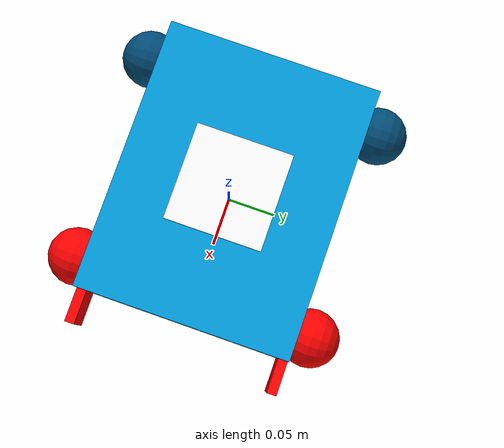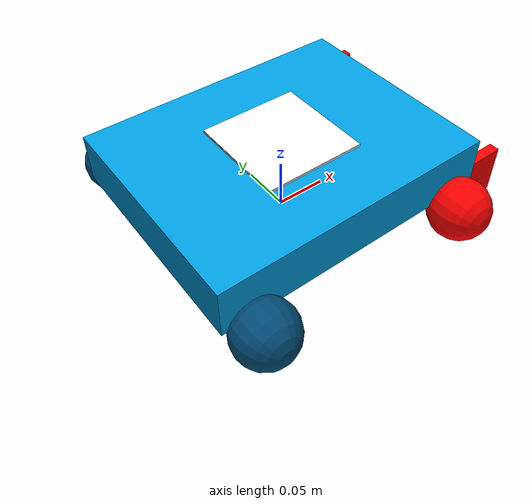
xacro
<?xml version="1.0"?>
<robot name="mecanum_vehicle" xmlns:xacro="http://www.ros.org/wiki/xacro" xmlns:ignition="http://gazebosim.org/schema">
<!-- Karam Dali 12/02/2025 Annecy,France -->
<!-- karamdali93@gmail.com -->
<!-- This is a simple 4 mecanume wheels robot with a tow figer gripper in the front of it -->

<!-- P.S  Any change in the robot dimentions should be reflected in config/mecanum_drive_controller . yaml -->

<!-- Robot Dimensions Parameters -->
<xacro:property name="robot_x" value="0.28" /> <!-- base_link length -->
<xacro:property name="robot_y" value="0.22" /> <!-- base_link width -->
<xacro:property name="robot_z" value="0.05" /> <!-- base_link height (thickness) -->
<xacro:property name="base_link_mass" value="0.75" />

<!-- base_link Inertia Parameters -->
<xacro:property name="base_link_ixx" value="${base_link_mass/12 * (robot_y*robot_y + robot_z*robot_z)}" />
<xacro:property name="base_link_iyy" value="${base_link_mass/12 * (robot_x*robot_x + robot_z*robot_z)}" />
<xacro:property name="base_link_izz" value="${base_link_mass/12 * (robot_x*robot_x + robot_y*robot_y)}" />

<!-- Robot AruCo Parameters -->
<xacro:property name="aruco_dimenstion" value="0.1" />
<xacro:property name="aruco_thick" value="0.002" />
<xacro:property name="aruco_mass" value="0.01" />
<xacro:property name="aruco_ixx" value="${aruco_mass/12 * (aruco_dimenstion*aruco_dimenstion + aruco_thick*aruco_thick)}" />
<xacro:property name="aruco_iyy" value="${aruco_mass/12 * (aruco_dimenstion*aruco_dimenstion + aruco_thick*aruco_thick)}" />
<xacro:property name="aruco_izz" value="${aruco_mass/12 * (aruco_dimenstion*aruco_dimenstion + aruco_dimenstion*aruco_dimenstion)}" />
<xacro:property name="aruco_z_offset" value="${base_link_center_z+robot_z/2 + 0.001}" />

<!-- Wheel Parameters -->
<xacro:property name="wheel_radius" value="0.03" />
<xacro:property name="wheel_width" value="0.03" />
<xacro:property name="wheel_mass" value="0.05" />

<!-- Wheel Inertia Parameters -->
<xacro:property name="wheel_ixx" value="${0.5 * wheel_mass * wheel_radius * wheel_radius}" />
<xacro:property name="wheel_iyy" value="${(1.0/12.0) * wheel_mass * (3*wheel_radius*wheel_radius + wheel_width*wheel_width)}" />
<xacro:property name="wheel_izz" value="${wheel_iyy}" />
<!-- We place the base_link center higher so the wheels touch ground at z=0. -->
<!-- base_link_center_z = wheel_radius + robot_z/2 -->
<xacro:property name="base_link_center_z" value="${wheel_radius + (robot_z/2)}" />
<!-- Calculated Joint Positions (relative to base_link origin) -->
<xacro:property name="front_x" value="${(robot_x / 2) - wheel_radius}" />
<xacro:property name="rear_x" value="${(-robot_x / 2) + wheel_radius}" />
<xacro:property name="left_y" value="${(robot_y / 2) + (wheel_width / 2)}" />
<xacro:property name="right_y" value="${(-robot_y / 2) - (wheel_width / 2)}" />
<!-- joint z is set so wheel center absolute z == wheel_radius (wheel touches ground) -->
<!-- joint z relative to base_link origin = -robot_z/2 -->
<xacro:property name="wheel_joint_z" value="${robot_z/2}"/>

<!-- Gripper specifications -->
<xacro:property name="gripper_mass" value="0.01" />
<xacro:property name="gripper_x" value="0.035" />
<xacro:property name="gripper_y" value="0.01" />
<xacro:property name="gripper_z" value="0.05" />
<xacro:property name="gripper_x_location" value="${(robot_x / 2) + (gripper_x/2)}" />
<xacro:property name="gripper_L_y_location" value="${((robot_y / 2) - (gripper_y/2))}" />
<xacro:property name="gripper_R_y_location" value="${-((robot_y / 2) - (gripper_y/2))}" />
<xacro:property name="gripper_z_location" value="${base_link_center_z/2}" />

<!-- Crate length -->
<xacro:property name="crate_length" value="0.15" />

<!-- Base base_link -->
<link name="base_link">
  <inertial>
    <mass value="${base_link_mass}"/>
    <inertia
    ixx="${base_link_ixx}"
    ixy="0.0"
    ixz="0.0"
    iyy="${base_link_iyy}"
    iyz="0.0"
    izz="${base_link_izz}"/>
    </inertial>
  <visual>
    <origin rpy="0 0 0" xyz="0 0 ${base_link_center_z}"/>
    <geometry>
      <box size="${robot_x} ${robot_y} ${robot_z}"/>
    </geometry>
    <material name="blue">
      <color rgba="0.0 0.612 0.867 1"/>
    </material>
  </visual>
  <collision>
    <origin rpy="0 0 0" xyz="0 0 ${base_link_center_z}"/>
    <geometry>
      <box size="${robot_x} ${robot_y} ${robot_z}"/>
    </geometry>
  </collision>
</link>

<!-- Robot AruCo  -->
<link name="aruco">
  <inertial>
    <mass value="${aruco_mass}"/>
    <inertia
      ixx="${aruco_ixx}"
      ixy="0.0"
      ixz="0.0"
      iyy="${aruco_iyy}"
      iyz="0.0"
      izz="${aruco_izz}"/>
  </inertial>

  <!-- Main ArUCo body (white) -->
  <visual>
    <origin rpy="0 0 1.57079" xyz="0 0 0"/>
    <geometry>
      <box size="${aruco_dimenstion} ${aruco_dimenstion} ${aruco_thick}"/>
    </geometry>
    <material name="white">
      <color rgba="1.0 1.0 1.0 1"/>
    </material>
  </visual>

  <!-- ArUCo texture on top surface -->
  <visual name="aruco_top">
    <origin xyz="0 0 ${aruco_thick/2}" rpy="0 0 0"/>
    <geometry>
      <box size="${aruco_dimenstion} ${aruco_dimenstion} 0.001"/>
    </geometry>
    <material name="white">
      <color rgba="1 1 1 0"/>
    </material>
  </visual>

  <collision>
    <origin rpy="0 0 0" xyz="0 0 0"/>
    <geometry>
      <box size="${aruco_dimenstion} ${aruco_dimenstion} ${aruco_thick}"/>
    </geometry>
  </collision>
</link>

<joint name="aruco_joint" type="fixed">
  <parent link="base_link"/>
  <child link="aruco"/>
  <origin xyz="0 0 ${aruco_z_offset}" rpy="0 0 0"/>
</joint>

<!-- Gripper Macro -->
<xacro:macro name="gripper" params="name x y z">
  <link name="${name}">
    <inertial>
      <mass value="${gripper_mass}"/>
      <inertia
        ixx="${(1/12) * gripper_mass * (y*y + z*z)}"
        ixy="0.0"
        ixz="0.0"
        iyy="${(1/12) * gripper_mass * (x*x + z*z)}"
        iyz="0.0"
        izz="${(1/12) * gripper_mass * (x*x + y*y)}"/>
    </inertial>
    <visual>
      <origin rpy="0 0 0" xyz="0 0 0"/>
      <geometry>
        <box size="${x} ${y} ${z}"/>
      </geometry>
      <material name="red_gripper">
        <color rgba="1.0 0.0 0.0 1"/>
      </material>
    </visual>
    <collision>
      <origin rpy="0 0 0" xyz="0 0 0"/>
      <geometry>
        <box size="${x} ${y} ${z}"/>
      </geometry>
    </collision>
  </link>
</xacro:macro>

<!-- Creat the left and right fingers of the gripper -->
<xacro:gripper name="gripper_L" x="${gripper_x}" y="${gripper_y}" z="${gripper_z}"/>
<xacro:gripper name="gripper_R" x="${gripper_x}" y="${gripper_y}" z="${gripper_z}"/>

<!-- Gripper joint macro -->
<xacro:macro name="gripper_joint" params="name parent child x y z robot_dimention_y side">
  <joint name="${name}" type="prismatic">
    <parent link="${parent}"/>
    <child link="${child}"/>
    <origin xyz="${x} ${y} ${z}" rpy="0 0 0"/>
    <!-- P.S : Left gripper moves in negative Y while right gripper moves in positive Y -->
    <xacro:if value="${side == 'left'}">
      <axis xyz="0 -1 0"/>
      <limit lower="0" upper="${((robot_dimention_y - (crate_length + 2*gripper_y)) / 2)+0.01}" effort="1000" velocity="0.1"/>
    </xacro:if>
    <xacro:if value="${side == 'right'}">
      <axis xyz="0 1 0"/>
      <limit lower="0" upper="${((robot_dimention_y - (crate_length + 2*gripper_y)) / 2)+0.01}" effort="1000" velocity="0.1"/>
    </xacro:if>
  </joint>
</xacro:macro>

<!-- Creat the gripper joints -->
<xacro:gripper_joint name="gripper_L_joint" parent="base_link" child="gripper_L"
x="${gripper_x_location}" y="${gripper_L_y_location}" z="${gripper_z_location}"
robot_dimention_y="${robot_y}" side="left"/>

<xacro:gripper_joint name="gripper_R_joint" parent="base_link" child="gripper_R"
x="${gripper_x_location}" y="${gripper_R_y_location}" z="${gripper_z_location}"
robot_dimention_y="${robot_y}" side="right"/>

<!-- Wheel Macro -->
<xacro:macro name="wheel" params="name color">
  <link name="${name}">
    <inertial>
      <mass value="${wheel_mass}"/>
      <inertia ixx="${wheel_ixx}" ixy="0.0" ixz="0.0" iyy="${wheel_iyy}" iyz="0.0" izz="${wheel_izz}"/>
    </inertial>
    <visual>
      <origin rpy="0 0 0" xyz="0 0 0"/>
      <geometry>
        <sphere radius="${wheel_radius}"/>
      </geometry>
      <material name="${color}">
        <xacro:if value="${color == 'red'}">
          <color rgba="1.0 0.0 0.0 1"/>
        </xacro:if>
        <xacro:unless value="${color == 'red'}">
          <color rgba="0.0 0.29 0.46 1"/>
        </xacro:unless>
      </material>
    </visual>
    <collision>
      <origin rpy="0 0 0" xyz="0 0 0"/>
      <geometry>
        <sphere radius="${wheel_radius}"/>
      </geometry>
    </collision>
  </link>
</xacro:macro>

<!-- Create Wheels -->
<xacro:wheel name="front_left_wheel" color="red"/>
<xacro:wheel name="front_right_wheel" color="red"/>
<xacro:wheel name="rear_left_wheel" color="dark_blue"/>
<xacro:wheel name="rear_right_wheel" color="dark_blue"/>

<!-- Wheel Joint Macro -->
<xacro:macro name="wheel_joint" params="name parent child x y z">
  <joint name="${name}" type="continuous">
    <parent link="${parent}"/>
    <child link="${child}"/>
    <origin xyz="${x} ${y} ${z}" rpy="1.57079 0 0"/>
    <axis xyz="0 0 1"/>
    <dynamics damping="0.2"/>
  </joint>
</xacro:macro>

<!-- Create Wheel Joints -->
<xacro:wheel_joint name="front_left_wheel_joint" parent="base_link" child="front_left_wheel"
x="${front_x}" y="${left_y}" z="${wheel_joint_z}"/>
<xacro:wheel_joint name="front_right_wheel_joint" parent="base_link" child="front_right_wheel"
x="${front_x}" y="${right_y}" z="${wheel_joint_z}"/>
<xacro:wheel_joint name="rear_left_wheel_joint" parent="base_link" child="rear_left_wheel"
x="${rear_x}" y="${left_y}" z="${wheel_joint_z}"/>
<xacro:wheel_joint name="rear_right_wheel_joint" parent="base_link" child="rear_right_wheel"
x="${rear_x}" y="${right_y}" z="${wheel_joint_z}"/>

<!-- Gazebo extension used to emulate mecanum wheel frictions -->
<xacro:macro name="gazebo" params="name value">
  <gazebo reference="${name}">
    <collision>
      <surface>
        <friction>
          <ode>
            <mu>1.0</mu>
            <mu2>0.0</mu2>
            <!-- We express friction direction in base_link frame to avoid confusion -->
            <fdir1 ignition:expressed_in="base_link">${value}</fdir1>
          </ode>
        </friction>
      </surface>
    </collision>
  </gazebo>
</xacro:macro>

<!-- base_link-frame mecanum directions (X forward, Y left) -->
<xacro:gazebo name="front_left_wheel"  value="1 -1 0"/>
<xacro:gazebo name="front_right_wheel" value="1 1 0"/>
<xacro:gazebo name="rear_left_wheel"   value="1 1 0"/>
<xacro:gazebo name="rear_right_wheel"  value="1 -1 0"/>

<ros2_control name="GazeboSimSystem" type="system">
  <hardware>
  <plugin>gz_ros2_control/GazeboSimSystem</plugin>
  </hardware>
  <joint name="front_left_wheel_joint">
    <command_interface name="velocity">
      <param name="min">-1</param>
      <param name="max">1</param>
    </command_interface>
      <state_interface name="position"/>
      <state_interface name="velocity"/>
  </joint>
  <joint name="front_right_wheel_joint">
    <command_interface name="velocity">
      <param name="min">-1</param>
      <param name="max">1</param>
    </command_interface>
      <state_interface name="position"/>
      <state_interface name="velocity"/>
  </joint>
  <joint name="rear_left_wheel_joint">
    <command_interface name="velocity">
      <param name="min">-1</param>
      <param name="max">1</param>
    </command_interface>
      <state_interface name="position"/>
      <state_interface name="velocity"/>
  </joint>
  <joint name="rear_right_wheel_joint">
    <command_interface name="velocity">
      <param name="min">-1</param>
      <param name="max">1</param>
    </command_interface>
      <state_interface name="position"/>
      <state_interface name="velocity"/>
  </joint>
  <joint name="gripper_L_joint">
  <command_interface name="position"/>
  <state_interface name="position"/>
  </joint>
  <joint name="gripper_R_joint">
    <command_interface name="position"/>
    <state_interface name="position"/>
  </joint>
</ros2_control>

<!-- IMU sensor -->
<link name="imu_link">
  <visual>
    <geometry>
      <box size="0.02 0.02 0.01"/>
    </geometry>
  </visual>
  <inertial>
    <mass value="0.01"/>
    <inertia ixx="1e-5" ixy="0" ixz="0" iyy="1e-5" iyz="0" izz="1e-5"/>
  </inertial>
</link>

<joint name="imu_joint" type="fixed">
  <parent link="base_link"/>
  <child link="imu_link"/>
  <origin xyz="0 0 0.05" rpy="0 0 0"/>
</joint>

<!-- ROS2 Control plugin and topic re-mapping -->
<gazebo>
  <plugin filename="gz_ros2_control-system" name="gz_ros2_control::GazeboSimROS2ControlPlugin">
    <parameters>$(find mam_eurobot_2026)/config/mecanum_drive_controller.yaml</parameters>
    <ros>
      <remapping>/mecanum_drive_controller/reference:=/cmd_vel</remapping>
      <remapping>/mecanum_drive_controller/odom:=/odom</remapping>
    </ros>
  </plugin>
</gazebo>

<gazebo reference="aruco">
  <visual name="aruco_top">
    <material>
      <diffuse>1 1 1 1</diffuse>
      <pbr>
        <metal>
          <albedo_map>
            model://models/aruco/aruco_17.png
          </albedo_map>
          <metalness>0.0</metalness>
          <roughness>0.0</roughness>
        </metal>
      </pbr>
      <double_sided>true</double_sided>
    </material>
  </visual>
</gazebo>

<gazebo reference="imu_link">
  <sensor name="imu_sensor" type="imu">
    <topic>imu</topic>
    <always_on>true</always_on>
    <update_rate>25</update_rate>
    <visualize>true</visualize>
    <gz_frame_id>imu_link</gz_frame_id>
    <plugin
      filename="gz-sim-imu-system"
      name="gz::sim::systems::Imu">
    </plugin>
  </sensor>
</gazebo>

</robot>
